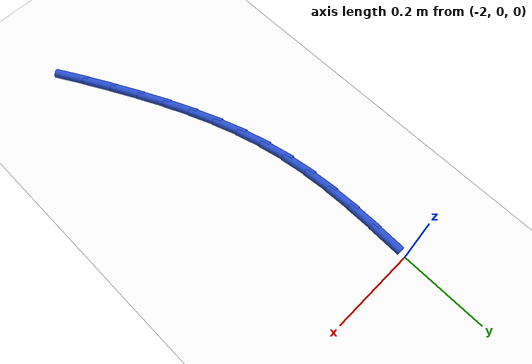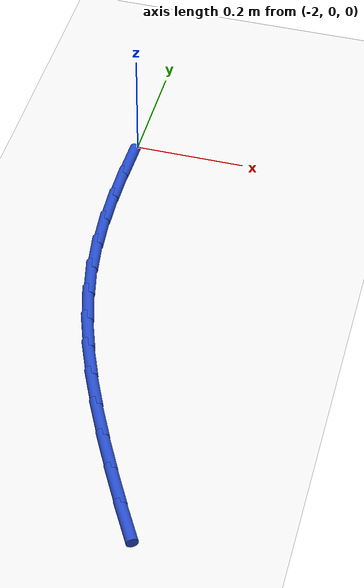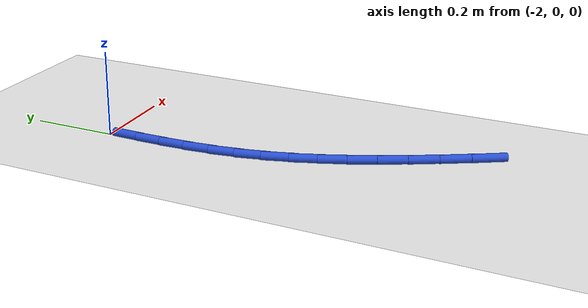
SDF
<sdf version="1.6">
 <world name="default">
  <model name="ground_plane">
   <static>1</static>
   <link name="link">
    <collision name="collision">
     <geometry><plane><normal>0 0 1</normal><size>100 100</size></plane></geometry>
     <surface><friction><ode><mu>100</mu><mu2>50</mu2></ode></friction></surface>
    </collision>
    <visual name="visual">
     <cast_shadows>0</cast_shadows>
     <geometry><plane><normal>0 0 1</normal><size>100 100</size></plane></geometry>
     <material>
      <script><uri>file://media/materials/scripts/gazebo.material</uri><name>Gazebo/WhiteGlow</name></script>
     </material>
    </visual>
   </link>
  </model>
  <model name="line">
   <link name="link_56">
    <pose>-2.001705354822526 -0.05366394580695931 0.01 0 1.57 1.553389795792975</pose>
    <collision name="collision">
     <geometry><cylinder><radius>0.01</radius><length>0.08</length></cylinder></geometry>
    </collision>
    <visual name="visual">
     <material>
      <script><name>Gazebo/Blue</name><uri>file://media/materials/scripts/gazebo.material</uri></script>
     </material>
     <geometry><cylinder><radius>0.01</radius><length>0.08</length></cylinder></geometry>
    </visual>
   </link>
   <link name="link_57">
    <pose>-2.0027904723771672 -0.11599732860567478 0.01 0 1.57 -1.5592594114162817</pose>
    <collision name="collision">
     <geometry><cylinder><radius>0.01</radius><length>0.08</length></cylinder></geometry>
    </collision>
    <visual name="visual">
     <material>
      <script><name>Gazebo/Blue</name><uri>file://media/materials/scripts/gazebo.material</uri></script>
     </material>
     <geometry><cylinder><radius>0.01</radius><length>0.08</length></cylinder></geometry>
    </visual>
   </link>
   <link name="link_58">
    <pose>-2.0020818441673405 -0.17741727897571025 0.01 0 1.57 -1.5199428031361122</pose>
    <collision name="collision">
     <geometry><cylinder><radius>0.01</radius><length>0.08</length></cylinder></geometry>
    </collision>
    <visual name="visual">
     <material>
      <script><name>Gazebo/Blue</name><uri>file://media/materials/scripts/gazebo.material</uri></script>
     </material>
     <geometry><cylinder><radius>0.01</radius><length>0.08</length></cylinder></geometry>
    </visual>
   </link>
   <link name="link_59">
    <pose>-1.9989973843404003 -0.23801879208978327 0.01 0 1.57 -1.4702254240437116</pose>
    <collision name="collision">
     <geometry><cylinder><radius>0.01</radius><length>0.08</length></cylinder></geometry>
    </collision>
    <visual name="visual">
     <material>
      <script><name>Gazebo/Blue</name><uri>file://media/materials/scripts/gazebo.material</uri></script>
     </material>
     <geometry><cylinder><radius>0.01</radius><length>0.08</length></cylinder></geometry>
    </visual>
   </link>
   <link name="link_60">
    <pose>-1.992955007043704 -0.2978968631206087 0.01 0 1.57 -1.4104557086459715</pose>
    <collision name="collision">
     <geometry><cylinder><radius>0.01</radius><length>0.08</length></cylinder></geometry>
    </collision>
    <visual name="visual">
     <material>
      <script><name>Gazebo/Blue</name><uri>file://media/materials/scripts/gazebo.material</uri></script>
     </material>
     <geometry><cylinder><radius>0.01</radius><length>0.08</length></cylinder></geometry>
    </visual>
   </link>
   <link name="link_61">
    <pose>-1.9833726264246068 -0.35714648724090414 0.01 0 1.57 -1.3431745287370602</pose>
    <collision name="collision">
     <geometry><cylinder><radius>0.01</radius><length>0.08</length></cylinder></geometry>
    </collision>
    <visual name="visual">
     <material>
      <script><name>Gazebo/Blue</name><uri>file://media/materials/scripts/gazebo.material</uri></script>
     </material>
     <geometry><cylinder><radius>0.01</radius><length>0.08</length></cylinder></geometry>
    </visual>
   </link>
   <link name="link_62">
    <pose>-1.969768189906209 -0.41587840479533716 0.01 0 1.57 -1.2795093833301492</pose>
    <collision name="collision">
     <geometry><cylinder><radius>0.01</radius><length>0.08</length></cylinder></geometry>
    </collision>
    <visual name="visual">
     <material>
      <script><name>Gazebo/Blue</name><uri>file://media/materials/scripts/gazebo.material</uri></script>
     </material>
     <geometry><cylinder><radius>0.01</radius><length>0.08</length></cylinder></geometry>
    </visual>
   </link>
   <link name="link_63">
    <pose>-1.9522534786876704 -0.4742968251752118 0.01 0 1.57 -1.2238565750670238</pose>
    <collision name="collision">
     <geometry><cylinder><radius>0.01</radius><length>0.08</length></cylinder></geometry>
    </collision>
    <visual name="visual">
     <material>
      <script><name>Gazebo/Blue</name><uri>file://media/materials/scripts/gazebo.material</uri></script>
     </material>
     <geometry><cylinder><radius>0.01</radius><length>0.08</length></cylinder></geometry>
    </visual>
   </link>
   <link name="link_64">
    <pose>-1.931158553352891 -0.5326403148037355 0.01 0 1.57 -1.176489523461246</pose>
    <collision name="collision">
     <geometry><cylinder><radius>0.01</radius><length>0.08</length></cylinder></geometry>
    </collision>
    <visual name="visual">
     <material>
      <script><name>Gazebo/Blue</name><uri>file://media/materials/scripts/gazebo.material</uri></script>
     </material>
     <geometry><cylinder><radius>0.01</radius><length>0.08</length></cylinder></geometry>
    </visual>
   </link>
   <link name="link_65">
    <pose>-1.9068138111189952 -0.5911474930899668 0.01 0 1.57 -1.1373371441789508</pose>
    <collision name="collision">
     <geometry><cylinder><radius>0.01</radius><length>0.08</length></cylinder></geometry>
    </collision>
    <visual name="visual">
     <material>
      <script><name>Gazebo/Blue</name><uri>file://media/materials/scripts/gazebo.material</uri></script>
     </material>
     <geometry><cylinder><radius>0.01</radius><length>0.08</length></cylinder></geometry>
    </visual>
   </link>
   <link name="link_66">
    <pose>-1.8795496492031085 -0.6500569794429646 0.01 0 1.57 -1.1061017176256418</pose>
    <collision name="collision">
     <geometry><cylinder><radius>0.01</radius><length>0.08</length></cylinder></geometry>
    </collision>
    <visual name="visual">
     <material>
      <script><name>Gazebo/Blue</name><uri>file://media/materials/scripts/gazebo.material</uri></script>
     </material>
     <geometry><cylinder><radius>0.01</radius><length>0.08</length></cylinder></geometry>
    </visual>
   </link>
   <link name="link_67">
    <pose>-1.8496964648223573 -0.7096073932717853 0.01 0 1.57 -1.0823540641025438</pose>
    <collision name="collision">
     <geometry><cylinder><radius>0.01</radius><length>0.08</length></cylinder></geometry>
    </collision>
    <visual name="visual">
     <material>
      <script><name>Gazebo/Blue</name><uri>file://media/materials/scripts/gazebo.material</uri></script>
     </material>
     <geometry><cylinder><radius>0.01</radius><length>0.08</length></cylinder></geometry>
    </visual>
   </link>
   <link name="link_68">
    <pose>-1.8175846551938653 -0.7700373539854883 0.01 0 1.57 -1.0650402083158297</pose>
    <collision name="collision">
     <geometry><cylinder><radius>0.01</radius><length>0.08</length></cylinder></geometry>
    </collision>
    <visual name="visual">
     <material>
      <script><name>Gazebo/Blue</name><uri>file://media/materials/scripts/gazebo.material</uri></script>
     </material>
     <geometry><cylinder><radius>0.01</radius><length>0.08</length></cylinder></geometry>
    </visual>
   </link>
   <link name="link_69">
    <pose>-1.7835311576930841 -0.8315279419172108 0.01 0 1.57 -1.0464523671021602</pose>
    <collision name="collision">
     <geometry><cylinder><radius>0.01</radius><length>0.08</length></cylinder></geometry>
    </collision>
    <visual name="visual">
     <material>
      <script><name>Gazebo/Blue</name><uri>file://media/materials/scripts/gazebo.material</uri></script>
     </material>
     <geometry><cylinder><radius>0.01</radius><length>0.08</length></cylinder></geometry>
    </visual>
   </link>
  </model>
 </world>
</sdf>
